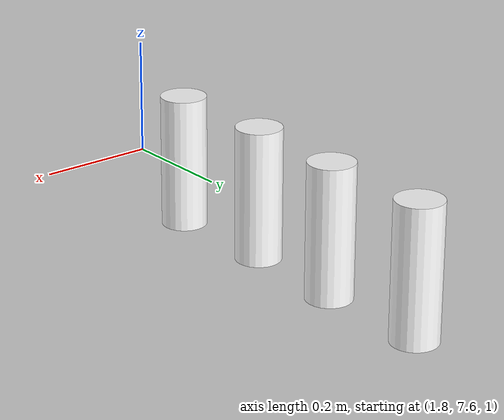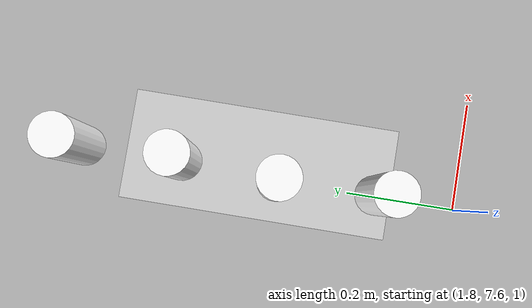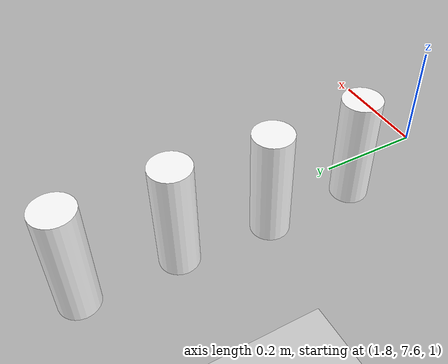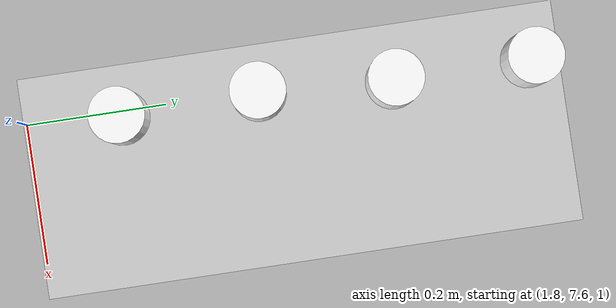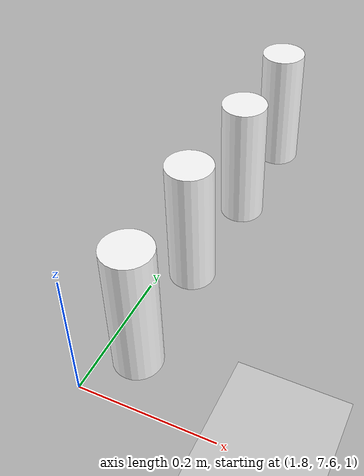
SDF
<sdf version="1.6">
 <world name="default">
  <model name="ground_plane">
   <static>1</static>
   <link name="link">
    <collision name="collision">
     <geometry><plane><normal>0 0 1</normal><size>100 100</size></plane></geometry>
     <surface><friction><ode><mu>100</mu><mu2>50</mu2></ode></friction></surface>
    </collision>
    <visual name="visual">
     <cast_shadows>0</cast_shadows>
     <geometry><plane><normal>0 0 1</normal><size>100 100</size></plane></geometry>
     <material>
      <script><uri>file://media/materials/scripts/gazebo.material</uri><name>Gazebo/Grey</name></script>
     </material>
    </visual>
   </link>
  </model>
  <model name="pringles_clone_1">
   <link name="link">
    <inertial>
     <mass>0.25</mass>
     <inertia><ixx>0</ixx><ixy>0</ixy><ixz>0</ixz><iyy>0</iyy><iyz>0</iyz><izz>0</izz></inertia>
    </inertial>
    <velocity_decay><linear>0</linear><angular>0</angular></velocity_decay>
    <visual name="visual">
     <geometry><cylinder><radius>0.04</radius><length>0.235</length></cylinder></geometry>
     <material>
      <script>
       <uri>model://pringles/material/scripts</uri>
       <uri>model://pringles/material/textures</uri>
       <name>Custom/pringles</name>
      </script>
      <shader type="pixel"/>
      <ambient>1 1 1 1</ambient>
      <diffuse>1 1 1 1</diffuse>
      <specular>0 0 0 1</specular>
      <emissive>0 0 0 1</emissive>
     </material>
    </visual>
    <collision name="collision">
     <geometry><cylinder><radius>0.04</radius><length>0.235</length></cylinder></geometry>
     <surface>
      <friction>
       <ode><mu>1</mu><mu2>1</mu2><fdir1>0 0 0</fdir1><slip1>0</slip1><slip2>0</slip2></ode>
       <torsional>
        <coefficient>1</coefficient>
        <patch_radius>0</patch_radius>
        <surface_radius>0</surface_radius>
        <use_patch_radius>1</use_patch_radius>
        <ode><slip>0</slip></ode>
       </torsional>
      </friction>
      <bounce><restitution_coefficient>0</restitution_coefficient><threshold>1e+06</threshold></bounce>
      <contact>
       <collide_without_contact>0</collide_without_contact>
       <collide_without_contact_bitmask>1</collide_without_contact_bitmask>
       <collide_bitmask>1</collide_bitmask>
       <ode>
        <soft_cfm>0</soft_cfm>
        <soft_erp>0.2</soft_erp>
        <kp>1e+13</kp>
        <kd>1</kd>
        <max_vel>0.01</max_vel>
        <min_depth>0</min_depth>
       </ode>
       <bullet>
        <split_impulse>1</split_impulse>
        <split_impulse_penetration_threshold>-0.01</split_impulse_penetration_threshold>
        <soft_cfm>0</soft_cfm>
        <soft_erp>0.2</soft_erp>
        <kp>1e+13</kp>
        <kd>1</kd>
       </bullet>
      </contact>
     </surface>
    </collision>
   </link>
   <static>1</static>
   <pose>1.80764 7.73313 1.0228 0 -0 0</pose>
  </model>
  <model name="pringles_clone_3">
   <link name="link">
    <inertial>
     <mass>0.25</mass>
     <inertia><ixx>0</ixx><ixy>0</ixy><ixz>0</ixz><iyy>0</iyy><iyz>0</iyz><izz>0</izz></inertia>
    </inertial>
    <velocity_decay><linear>0</linear><angular>0</angular></velocity_decay>
    <visual name="visual">
     <geometry><cylinder><radius>0.04</radius><length>0.235</length></cylinder></geometry>
     <material>
      <script>
       <uri>model://pringles/material/scripts</uri>
       <uri>model://pringles/material/textures</uri>
       <name>Custom/pringles</name>
      </script>
      <shader type="pixel"/>
      <ambient>1 1 1 1</ambient>
      <diffuse>1 1 1 1</diffuse>
      <specular>0 0 0 1</specular>
      <emissive>0 0 0 1</emissive>
     </material>
    </visual>
    <collision name="collision">
     <geometry><cylinder><radius>0.04</radius><length>0.235</length></cylinder></geometry>
     <surface>
      <friction>
       <ode><mu>1</mu><mu2>1</mu2><fdir1>0 0 0</fdir1><slip1>0</slip1><slip2>0</slip2></ode>
       <torsional>
        <coefficient>1</coefficient>
        <patch_radius>0</patch_radius>
        <surface_radius>0</surface_radius>
        <use_patch_radius>1</use_patch_radius>
        <ode><slip>0</slip></ode>
       </torsional>
      </friction>
      <bounce><restitution_coefficient>0</restitution_coefficient><threshold>1e+06</threshold></bounce>
      <contact>
       <collide_without_contact>0</collide_without_contact>
       <collide_without_contact_bitmask>1</collide_without_contact_bitmask>
       <collide_bitmask>1</collide_bitmask>
       <ode>
        <soft_cfm>0</soft_cfm>
        <soft_erp>0.2</soft_erp>
        <kp>1e+13</kp>
        <kd>1</kd>
        <max_vel>0.01</max_vel>
        <min_depth>0</min_depth>
       </ode>
       <bullet>
        <split_impulse>1</split_impulse>
        <split_impulse_penetration_threshold>-0.01</split_impulse_penetration_threshold>
        <soft_cfm>0</soft_cfm>
        <soft_erp>0.2</soft_erp>
        <kp>1e+13</kp>
        <kd>1</kd>
       </bullet>
      </contact>
     </surface>
    </collision>
   </link>
   <static>1</static>
   <pose>1.80269 7.93247 1.0228 0 -0 0</pose>
  </model>
  <model name="pringles2_clone">
   <link name="link">
    <inertial>
     <mass>0.25</mass>
     <inertia><ixx>0</ixx><ixy>0</ixy><ixz>0</ixz><iyy>0</iyy><iyz>0</iyz><izz>0</izz></inertia>
    </inertial>
    <velocity_decay><linear>0</linear><angular>0</angular></velocity_decay>
    <visual name="visual">
     <pose>0 0 0.12 -3.14159 0 0</pose>
     <geometry><cylinder><radius>0.04</radius><length>0.235</length></cylinder></geometry>
     <material>
      <script>
       <uri>model://pringles2/material/scripts</uri>
       <uri>model://pringles2/material/textures</uri>
       <name>Custom/pringles2</name>
      </script>
      <shader type="pixel"/>
      <ambient>1 1 1 1</ambient>
      <diffuse>1 1 1 1</diffuse>
      <specular>0 0 0 1</specular>
      <emissive>0 0 0 1</emissive>
     </material>
    </visual>
    <collision name="collision">
     <pose>0 0 0.12 -3.14159 0 0</pose>
     <geometry><cylinder><radius>0.04</radius><length>0.235</length></cylinder></geometry>
     <surface>
      <friction>
       <ode><mu>1</mu><mu2>1</mu2><fdir1>0 0 0</fdir1><slip1>0</slip1><slip2>0</slip2></ode>
       <torsional>
        <coefficient>1</coefficient>
        <patch_radius>0</patch_radius>
        <surface_radius>0</surface_radius>
        <use_patch_radius>1</use_patch_radius>
        <ode><slip>0</slip></ode>
       </torsional>
      </friction>
      <bounce><restitution_coefficient>0</restitution_coefficient><threshold>1e+06</threshold></bounce>
      <contact>
       <collide_without_contact>0</collide_without_contact>
       <collide_without_contact_bitmask>1</collide_without_contact_bitmask>
       <collide_bitmask>1</collide_bitmask>
       <ode>
        <soft_cfm>0</soft_cfm>
        <soft_erp>0.2</soft_erp>
        <kp>1e+13</kp>
        <kd>1</kd>
        <max_vel>0.01</max_vel>
        <min_depth>0</min_depth>
       </ode>
       <bullet>
        <split_impulse>1</split_impulse>
        <split_impulse_penetration_threshold>-0.01</split_impulse_penetration_threshold>
        <soft_cfm>0</soft_cfm>
        <soft_erp>0.2</soft_erp>
        <kp>1e+13</kp>
        <kd>1</kd>
       </bullet>
      </contact>
     </surface>
    </collision>
   </link>
   <static>1</static>
   <pose>1.81376 8.12586 0.9037 0 -0 0</pose>
  </model>
  <model name="pringles2_clone_1">
   <link name="link">
    <inertial>
     <mass>0.25</mass>
     <inertia><ixx>0</ixx><ixy>0</ixy><ixz>0</ixz><iyy>0</iyy><iyz>0</iyz><izz>0</izz></inertia>
    </inertial>
    <velocity_decay><linear>0</linear><angular>0</angular></velocity_decay>
    <visual name="visual">
     <pose>0 0 0.12 -3.14159 0 0</pose>
     <geometry><cylinder><radius>0.04</radius><length>0.235</length></cylinder></geometry>
     <material>
      <script>
       <uri>model://pringles2/material/scripts</uri>
       <uri>model://pringles2/material/textures</uri>
       <name>Custom/pringles2</name>
      </script>
      <shader type="pixel"/>
      <ambient>1 1 1 1</ambient>
      <diffuse>1 1 1 1</diffuse>
      <specular>0 0 0 1</specular>
      <emissive>0 0 0 1</emissive>
     </material>
    </visual>
    <collision name="collision">
     <pose>0 0 0.12 -3.14159 0 0</pose>
     <geometry><cylinder><radius>0.04</radius><length>0.235</length></cylinder></geometry>
     <surface>
      <friction>
       <ode><mu>1</mu><mu2>1</mu2><fdir1>0 0 0</fdir1><slip1>0</slip1><slip2>0</slip2></ode>
       <torsional>
        <coefficient>1</coefficient>
        <patch_radius>0</patch_radius>
        <surface_radius>0</surface_radius>
        <use_patch_radius>1</use_patch_radius>
        <ode><slip>0</slip></ode>
       </torsional>
      </friction>
      <bounce><restitution_coefficient>0</restitution_coefficient><threshold>1e+06</threshold></bounce>
      <contact>
       <collide_without_contact>0</collide_without_contact>
       <collide_without_contact_bitmask>1</collide_without_contact_bitmask>
       <collide_bitmask>1</collide_bitmask>
       <ode>
        <soft_cfm>0</soft_cfm>
        <soft_erp>0.2</soft_erp>
        <kp>1e+13</kp>
        <kd>1</kd>
        <max_vel>0.01</max_vel>
        <min_depth>0</min_depth>
       </ode>
       <bullet>
        <split_impulse>1</split_impulse>
        <split_impulse_penetration_threshold>-0.01</split_impulse_penetration_threshold>
        <soft_cfm>0</soft_cfm>
        <soft_erp>0.2</soft_erp>
        <kp>1e+13</kp>
        <kd>1</kd>
       </bullet>
      </contact>
     </surface>
    </collision>
   </link>
   <static>1</static>
   <pose>1.81228 8.32284 0.9037 0 -0 0</pose>
  </model>
 </world>
</sdf>
